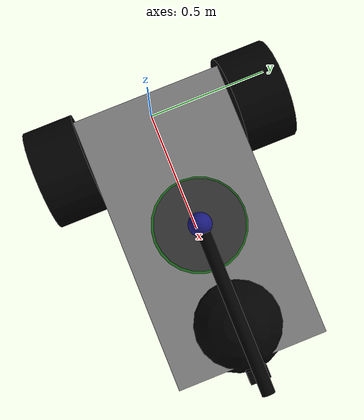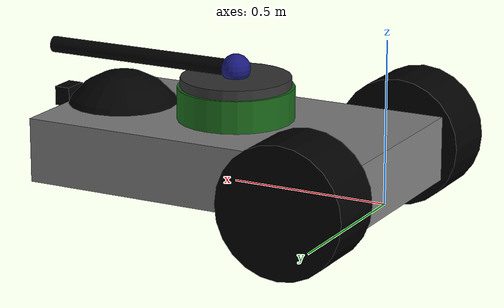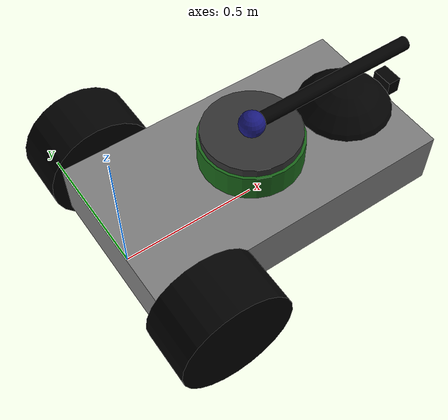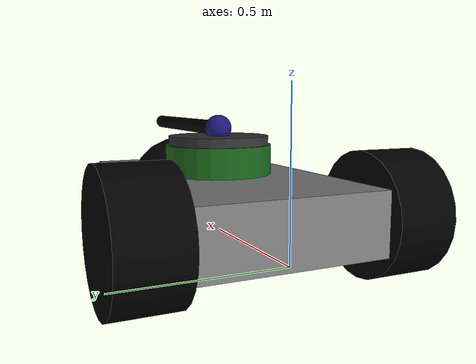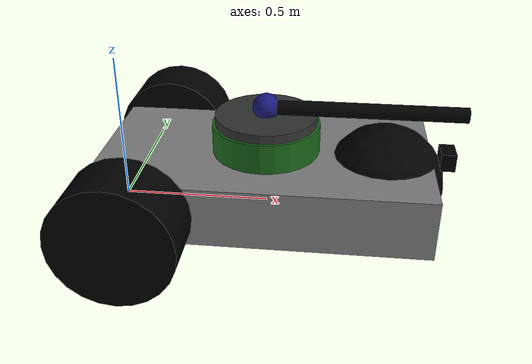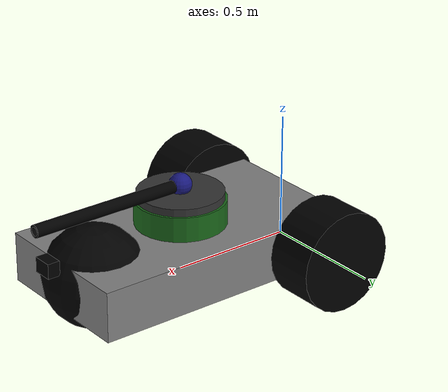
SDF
<?xml version="1.0" ?>
<sdf version="1.8">
  <model name="myrobot">
    <pose>0 0 0 0 0 0</pose>

    <link name="base_footprint"/>

    <link name="base_link">
        <pose>0.5 0 0.1 0 0 0</pose>

        <visual name="base_visual">
            <pose>0 0 0 0 0 0</pose>
            <geometry>
                <box>
                    <size>1.1 0.6 0.2</size>
                </box>
            </geometry>
            <material>
                <ambient>0.5 0.5 0.5 1</ambient>
                <diffuse>0.5 0.5 0.5 1</diffuse>
            </material>
        </visual>

        <collision name="base_collision">
            <pose>0 0 0 0 0 0</pose>
            <geometry>
                <box>
                    <size>1.1 0.6 0.2</size>
                </box>
            </geometry>
        </collision>

        <inertial>
            <pose>0 0 0 0 0 0</pose>
            <mass>10</mass>
            <inertia>
                <ixx>0.1</ixx>
                <iyy>0.1</iyy>
                <izz>0.1</izz>
                <ixy>0</ixy>
                <ixz>0</ixz>
                <iyz>0</iyz>
            </inertia>
        </inertial>
    </link>

    <link name="lbwheel">
        <pose>0.1 0.4 0.1 -1.57 0 0</pose>

         <visual name="lbwheel_visual">
            <pose>0 0 0 0 0 0</pose>
            <geometry>
                <cylinder>
                    <radius>0.2</radius>
                    <length>0.2</length>
                </cylinder>
            </geometry>
            <material>
                <ambient>0 0 0 1</ambient>
                <diffuse>0 0 0 1</diffuse>
            </material>
        </visual>

        <collision name="lbwheel_collision">
            <pose>0 0 0 0 0 0</pose>
            <geometry>
                <cylinder>
                    <radius>0.2</radius>
                    <length>0.2</length>
                </cylinder>
            </geometry>
            <surface>
            <friction>
            <ode>
              <mu>100</mu>
              <mu2>100</mu2>
            </ode>
            </friction>
            <contact>
            <ode>
              <soft_cfm>0</soft_cfm>
              <soft_erp>0.2</soft_erp>
              <kp>1e+5</kp>
              <kd>1</kd>
              <max_vel>0.01</max_vel>
              <min_depth>0.001</min_depth>
            </ode>
          </contact>
          </surface>
        </collision>

        <inertial>
            <pose>0 0 0 0 0 0</pose>
            <mass>2</mass>
            <inertia>
                <ixx>0.01</ixx>
                <iyy>0.01</iyy>
                <izz>0.01</izz>
                <ixy>0</ixy>
                <ixz>0</ixz>
                <iyz>0</iyz>
            </inertia>
        </inertial>
    </link>
    <link name="rbwheel">
        <pose>0.1 -0.4 0.1 -1.57 0 0</pose>

         <visual name="rbwheel_visual">
            <pose>0 0 0 0 0 0</pose>
            <geometry>
                <cylinder>
                    <radius>0.2</radius>
                    <length>0.2</length>
                </cylinder>
            </geometry>
            <material>
                <ambient>0 0 0 1</ambient>
                <diffuse>0 0 0 1</diffuse>
            </material>
        </visual>

        <collision name="rbwheel_collision">
            <pose>0 0 0 0 0 0</pose>
            <geometry>
                <cylinder>
                    <radius>0.2</radius>
                    <length>0.2</length>
                </cylinder>
            </geometry>
            <surface>
            <friction>
            <ode>
              <mu>100</mu>
              <mu2>100</mu2>
            </ode>
            </friction>
            <contact>
            <ode>
              <soft_cfm>0</soft_cfm>
              <soft_erp>0.2</soft_erp>
              <kp>1e+5</kp>
              <kd>1</kd>
              <max_vel>0.01</max_vel>
              <min_depth>0.001</min_depth>
            </ode>
          </contact>
          </surface>
        </collision>

        <inertial>
            <pose>0 0 0 0 0 0</pose>
            <mass>2</mass>
            <inertia>
                <ixx>0.01</ixx>
                <iyy>0.01</iyy>
                <izz>0.01</izz>
                <ixy>0</ixy>
                <ixz>0</ixz>
                <iyz>0</iyz>
            </inertia>
        </inertial>
    </link>

    <link name="fcastorwheel">
        <pose>0.9 0 0.1 0 0 0</pose>

         <visual name="fcastorwheel_visual">
            <pose>0 0 0 0 0 0</pose>
            <geometry>
                <sphere>
                    <radius>0.2</radius>
                </sphere>
            </geometry>
            <material>
                <ambient>0 0 0 1</ambient>
                <diffuse>0 0 0 1</diffuse>
            </material>
        </visual>

        <collision name="fcastorwheel_collision">
            <pose>0 0 0 0 0 0</pose>
            <geometry>
                <sphere>
                    <radius>0.2</radius>
                </sphere>
            </geometry>
            <surface>
            <friction>
            <ode>
              <mu>0.01</mu>
              <mu2>0.01</mu2>
            </ode>
            </friction>
          <contact>
            <ode>
              <soft_cfm>0</soft_cfm>
              <soft_erp>0.2</soft_erp>
            </ode>
          </contact>
        </surface>
        </collision>

        <inertial>
            <pose>0 0 0 0 0 0</pose>
            <mass>0.5</mass>
            <inertia>
                <ixx>0.00001</ixx>
                <iyy>0.00001</iyy>
                <izz>0.00001</izz>
                <ixy>0</ixy>
                <ixz>0</ixz>
                <iyz>0</iyz>
            </inertia>
        </inertial>
    </link>

    <link name="shooter_base">
        <pose>0.5 0 0.25 0 0 0</pose>

         <visual name="shooter_base_visual">
            <pose>0 0 0 0 0 0</pose>
            <geometry>
                <cylinder>
                    <radius>0.18</radius>
                    <length>0.1</length>
                </cylinder>
            </geometry>
            <material>
                <ambient>0.1 0.4 0.1 1</ambient>
                <diffuse>0.1 0.4 0.1 1</diffuse>
            </material>
        </visual>

        <collision name="shooter_base_collision">
            <pose>0 0 0 0 0 0</pose>
            <geometry>
                <cylinder>
                    <radius>0.18</radius>
                    <length>0.2</length>
                </cylinder>
            </geometry>
        </collision>

        <inertial>
            <pose>0 0 0 0 0 0</pose>
            <mass>1</mass>
            <inertia>
                <ixx>0.01</ixx>
                <iyy>0.01</iyy>
                <izz>0.01</izz>
                <ixy>0</ixy>
                <ixz>0</ixz>
                <iyz>0</iyz>
            </inertia>
        </inertial>
    </link>

    <link name="rotator">
        <pose>0.5 0 0.315 0 0 0</pose>

         <visual name="rotator_visual">
            <pose>0 0 0 0 0 0</pose>
            <geometry>
                <cylinder>
                    <radius>0.17</radius>
                    <length>0.03</length>
                </cylinder>
            </geometry>
            <material>
                <ambient>0.2 0.2 0.2 1</ambient>
                <diffuse>0.2 0.2 0.2 1</diffuse>
            </material>
        </visual>

        <collision name="rotator_collision">
            <pose>0 0 0 0 0 0</pose>
            <geometry>
                <cylinder>
                    <radius>0.17</radius>
                    <length>0.03</length>
                </cylinder>
            </geometry>
        </collision>

        <inertial>
            <pose>0 0 0 0 0 0</pose>
            <mass>0.05</mass>
            <inertia>
                <ixx>0.001</ixx>
                <iyy>0.001</iyy>
                <izz>0.001</izz>
                <ixy>0</ixy>
                <ixz>0</ixz>
                <iyz>0</iyz>
            </inertia>
        </inertial>
    </link>

    <link name="barrel">
        <pose>0.5 0 0.355 0 0 0</pose>

         <visual name="barrel_visual">
            <pose>0 0 0 0 0 0</pose>
            <geometry>
                <mesh>
                    <uri>model://shooter/meshes/barrel.stl</uri>
                    <scale>1 1 1</scale>
                </mesh>
            </geometry>
            <material>
                <ambient>0 0 0 1</ambient>
                <diffuse>0 0 0 1</diffuse>
            </material>
        </visual>

        <collision name="barrel_collision">
            <pose>0 0 0 0 0 0</pose>
            <geometry>
                <mesh>
                    <uri>model://shooter/meshes/barrel.stl</uri>
                    <scale>1 1 1</scale>
                </mesh>
            </geometry>
        </collision>

        <inertial>
            <pose>0 0 0 0 0 0</pose>
            <mass>20</mass> <!-- Increased mass -->
            <inertia>
                <ixx>0.005</ixx> <!-- Increased inertia -->
                <iyy>0.005</iyy>
                <izz>0.005</izz>
                <ixy>0</ixy>
                <ixz>0</ixz>
                <iyz>0</iyz>
            </inertia>
        </inertial>
    </link>

    <link name="connector">
        <pose>0.5 0 0.355 0 0 0</pose>

         <visual name="connector_visual">
            <pose>0 0 0 0 0 0</pose>
            <geometry>
                <sphere>
                    <radius>0.045</radius>
                </sphere>
            </geometry>
            <material>
                <ambient>0.1 0.1 0.5 1</ambient>
                <diffuse>0.1 0.1 0.5 1</diffuse>
            </material>
        </visual>

        <collision name="connector_collision">
            <pose>0 0 0 0 0 0</pose>
            <geometry>
                <sphere>
                    <radius>0.045</radius>
                </sphere>
            </geometry>
        </collision>

        <inertial>
            <pose>0 0 0 0 0 0</pose>
            <mass>0.1</mass>
            <inertia>
                <ixx>1e-5</ixx>
                <iyy>1e-5</iyy>
                <izz>1e-5</izz>
                <ixy>0</ixy>
                <ixz>0</ixz>
                <iyz>0</iyz>
            </inertia>
        </inertial>
    </link>

    <link name="stopper">
        <pose>0.58 0 0.355 0 1.57 0</pose>

         <visual name="stopper_visual">
            <pose>0 0 0 0 0 0</pose>
            <geometry>
                <cylinder>
                    <radius>0.0165</radius>
                    <length>0.05</length>
                </cylinder>
            </geometry>
            <material>
                <ambient>0.5 0.5 0.5 1</ambient>
                <diffuse>0.5 0.5 0.5 1</diffuse>
            </material>
        </visual>

        <collision name="stopper_collision">
            <pose>0 0 0 0 0 0</pose>
            <geometry>
                <cylinder>
                    <radius>0.0165</radius>
                    <length>0.05</length>
                </cylinder>
            </geometry>
        </collision>

        <inertial>
            <pose>0 0 0 0 0 0</pose>
            <mass>0.001</mass> <!-- Increased mass -->
            <inertia>
                <ixx>0.0005</ixx> <!-- Increased inertia -->
                <iyy>0.0005</iyy>
                <izz>0.0005</izz>
                <ixy>0</ixy>
                <ixz>0</ixz>
                <iyz>0</iyz>
            </inertia>
        </inertial>
    </link>

    <!-- Camera -->
    <link name="camera">
      <pose>1.1 0 0.2 0 0 0</pose>
      <inertial>
        <mass>0.1</mass>
        <inertia>
          <ixx>0.001</ixx>
          <ixy>0.0</ixy>
          <ixz>0.0</ixz>
          <iyy>0.001</iyy>
          <iyz>0.0</iyz>
          <izz>0.001</izz>
        </inertia>
      </inertial>
      <visual name="camera_visual">
        <pose>0 0 0 0 0 0</pose>
        <geometry>
          <box>
            <size>0.05 0.08 0.06</size>
          </box>
        </geometry>
        <material> <!-- black colour for camera-->
          <ambient>0 0 0 1</ambient>
          <diffuse>0 0 0 1</diffuse>
        </material>
      </visual>
      <sensor name="camera_sensor" type="camera">
        <pose>0.025 0 0 0 0 0</pose>
        <camera>
          <horizontal_fov>1.047</horizontal_fov>
          <image>
            <width>640</width>
            <height>480</height>
            <format>R8G8B8</format>
          </image>
          <clip>
            <near>0.1</near>
            <far>100</far>
          </clip>
        </camera>
        <always_on>1</always_on>
        <update_rate>30</update_rate>
        <visualize>true</visualize>
        <topic>camera/image_raw</topic>
      </sensor>
    </link>

    <!-- Camera RGB Optical Frame -->
    <link name="camera_rgb_optical_frame">
      <pose>1.125 0 0.1 0 0 0</pose>
      <inertial>
        <mass>0.001</mass>
        <inertia>
          <ixx>0.0001</ixx>
          <ixy>0.0</ixy>
          <ixz>0.0</ixz>
          <iyy>0.0001</iyy>
          <iyz>0.0</iyz>
          <izz>0.0001</izz>
        </inertia>
      </inertial>
    </link>

  <!-- joints-->

  <joint name="base_joint" type="fixed">
    <parent>base_footprint</parent>
    <child>base_link</child>
  </joint>

  <joint name="lbwheel_joint" type="revolute">
    <parent>base_link</parent>
    <child>lbwheel</child>
    <axis>
      <xyz>0 0 1</xyz>
        <limit>
          <effort>20</effort>
        </limit>
    </axis>
  </joint>

  <joint name="rbwheel_joint" type="revolute">
    <parent>base_link</parent>
    <child>rbwheel</child>
    <axis>
      <xyz>0 0 1</xyz>
        <limit>
          <effort>20</effort>
        </limit>
    </axis>
  </joint>

  <joint name="fcastorwheel_joint" type="ball">
    <parent>base_link</parent>
    <child>fcastorwheel</child>
  </joint>

  <joint name="shooter_base_joint" type="fixed">
    <parent>base_link</parent>
    <child>shooter_base</child>
  </joint>

  <joint name="rotator_joint" type="revolute">
    <parent>shooter_base</parent>
    <child>rotator</child>
    <axis>
      <xyz>0 0 1</xyz>
      <limit>
        <lower>-3.14</lower>
        <upper>3.14</upper>
        <effort>1000</effort>
        <velocity>2.5</velocity>
      </limit>
        <dynamics>
            <damping>0.2</damping> <!-- Added damping to reduce wobbling -->
        </dynamics>
    </axis>
  </joint>

  <joint name="barrel_joint" type="revolute">
    <parent>rotator</parent>
    <child>barrel</child>
    <axis>
      <xyz>0 -1 0</xyz>
      <limit>
        <lower>0</lower>
        <upper>1.57</upper>
        <effort>100</effort> <!-- Increased effort 10 times -->
        <velocity>100</velocity>
      </limit>
      <dynamics>
        <damping>0.2</damping> <!-- Added damping to reduce wobbling -->
      </dynamics>
    </axis>
  </joint>

  <joint name="connector_joint" type="fixed">
    <parent>barrel</parent>
    <child>connector</child>
  </joint>

  <joint name="stopper_joint" type="prismatic">
    <parent>barrel</parent>
    <child>stopper</child>
    <axis>
      <xyz>0 0 1</xyz>
      <limit>
        <lower>0</lower>
        <upper>0.95</upper>
        <effort>1000</effort> <!-- Increased effort 10 times -->
        <velocity>10000</velocity> <!-- Corrected velocity limit to allow movement -->
      </limit>
      <dynamics>
        <damping>0.001</damping> <!-- Added damping to reduce wobbling -->
      </dynamics>
    </axis>
  </joint>

  <joint name="camera_joint" type="fixed">
    <parent>base_link</parent>
    <child>camera</child>
  </joint>

  <joint name="camera_rgb_joint" type="fixed">
    <parent>camera</parent>
    <child>camera_rgb_optical_frame</child>
    <pose>0.025 0 0 -1.5708 0 -1.5708</pose>
  </joint>

  <!-- Plugins -->

    <plugin filename="gz-sim-joint-state-publisher-system" name="gz::sim::systems::JointStatePublisher">
      <topic>joint_states</topic>
    </plugin>

    <!-- Joint position controller for the rotator -->
    <plugin filename="gz-sim-joint-position-controller-system" name="gz::sim::systems::JointPositionController">
      <joint_name>rotator_joint</joint_name>
      <topic>rotate_joint_position_controller/command</topic>
      <initial_position>0</initial_position>
        <pid>
            <p>1000</p>
            <i>50</i>
            <d>10</d>
        </pid>
    </plugin>

    <!-- Joint position controller for the barrel -->
    <plugin filename="gz-sim-joint-position-controller-system" name="gz::sim::systems::JointPositionController">
      <joint_name>barrel_joint</joint_name>
      <topic>barrel_joint_position_controller/command</topic>
      <initial_position>0</initial_position>
    <pid>
        <p>1500</p> <!-- Increased proportional gain -->
        <i>100</i> <!-- Increased integral gain -->
        <d>20</d> <!-- Increased derivative gain -->
    </pid>
    </plugin>

    <!-- Joint position controller for the stopper -->
    <plugin filename="gz-sim-joint-position-controller-system" name="gz::sim::systems::JointPositionController">
      <joint_name>stopper_joint</joint_name>
      <topic>stopper_joint_position_controller/command</topic>
      <initial_position>0</initial_position>
    <pid>
        <p>3000</p> <!-- Increased proportional gain -->
        <i>200</i> <!-- Increased integral gain -->
        <d>50</d> <!-- Increased derivative gain -->
    </pid>
    </plugin>

    <!-- Differential drive which controls the back 2 wheels and the front ones act as castor wheels -->
    <plugin filename="gz-sim-diff-drive-system" name="gz::sim::systems::DiffDrive">
      <left_joint>lbwheel_joint</left_joint>
      <right_joint>rbwheel_joint</right_joint>
    <wheel_separation>0.8</wheel_separation>
      <wheel_radius>0.2</wheel_radius>
      <max_linear_acceleration>2.0</max_linear_acceleration>
      <topic>cmd_vel</topic>
      <odom_topic>odom</odom_topic>
      <frame_id>odom</frame_id>
      <child_frame_id>base_footprint</child_frame_id>
      <odom_publisher_frequency>30</odom_publisher_frequency>
      <tf_topic>/tf</tf_topic>
    </plugin>

    <!-- Camera sensor plugin -->
    <plugin filename="gz-sim-sensors-system" name="gz::sim::systems::Sensors">
      <render_engine>ogre2</render_engine>
    </plugin>

  </model>
</sdf>
